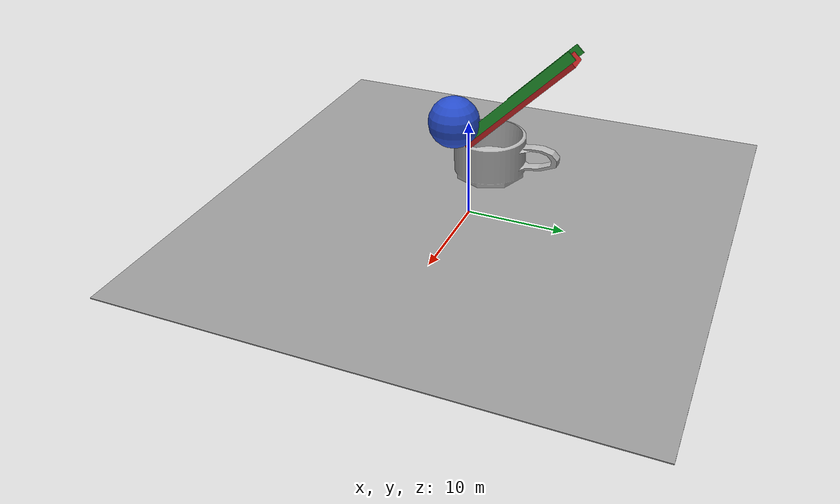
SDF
<?xml version="1.0"?>

<sdf version="1.5">
  <world name="slide_world">

  <!-- cfm is 1e-5 for single precision -->
  <!-- erp is typically .1-.8 -->
  <!-- here's the global contact cfm/erp -->
  <physics type="ode">
    <gravity>0 0 -9.8</gravity>
    <ode>
      <solver>
        <type>quick</type>
        <iters>10</iters>
        <sor>1.3</sor>
      </solver>
      <constraints>
        <cfm>0.0000000001</cfm>
        <erp>0.2</erp>
        <contact_max_correcting_vel>100.0</contact_max_correcting_vel>
        <contact_surface_layer>0.001</contact_surface_layer>
      </constraints>
    </ode>
  </physics>

  <gui>
    <camera name="user_camera">
      <pose>-50 0 50.0 0 0.653225966620481 0.011400943877021689835</pose>
    </camera>
  </gui>

  <scene>
    <ambient>0.8 0.8 0.8 0.8</ambient>
    <sky>
    </sky>
    <grid>false</grid>
  </scene>
  <!-- A global light source -->
  <light type="directional" name="sun">
    <cast_shadows>true</cast_shadows>
    <pose>0 0 10 0 0 0</pose>
    <diffuse>0.8 0.8 0.8 1</diffuse>
    <specular>0.2 0.2 0.2 1</specular>
    <attenuation>
      <range>1000</range>
      <constant>0.9</constant>
      <linear>0.01</linear>
      <quadratic>0.001</quadratic>
    </attenuation>
    <direction>-0.5 0.1 -0.9</direction>
  </light>

  <model name="gplane">
    <pose>0 0 0 0 0 0</pose>
    <static>true</static>

    <link name="plane">
      <collision name="plane">
        <surface>
          <contact>
            <ode>
              <kp>1000000.0</kp>
              <kd>1.0</kd>
            </ode>
          </contact>
        </surface>
        <geometry>
          <box>
            <size>51.3 51.3 0.1</size>
          </box>
        </geometry>
      </collision>
      <visual name="plane">
        <!-- map3.png -->
        <material>
          <script>
            <uri>file://media/materials/scripts/gazebo.material</uri>
            <name>Gazebo/GrayGrid</name>
          </script>
        </material>
        <geometry>
          <box>
            <size>51.3 51.3 0.1</size>
          </box>
        </geometry>
      </visual>
    </link>
  </model>

  <model name="endbin_model">
    <static>true</static>
    <link name="endbin_body">
      <collision name="endbin_body_collision">
        <pose>   -6.0    0.0     1.6  -1.5708    0.0    1.5708</pose>
        <geometry>
          <mesh>
            <scale>5 2 5</scale>
            <uri>model://Media/models/slide_endbin.stl</uri>
          </mesh>
        </geometry>
        <surface>
          <contact>
            <ode>
              <kp>10000000000.0</kp>
              <kd>1</kd>
            </ode>
          </contact>
          <friction>
            <ode>
              <mu>0.0</mu>
              <mu2>0.0</mu2>
            </ode>
          </friction>
        </surface>
      </collision>
      <visual name="endbin_body_visual">
        <pose>   -6.0    0.0     1.6  -1.5708    0.0    1.5708</pose>
        <geometry>
          <mesh>
            <scale>5 2 5</scale>
            <uri>model://Media/models/slide_endbin.stl</uri>
          </mesh>
        </geometry>
      </visual>
    </link>
  </model>

  <!-- The Slide -->
  <model name="slide1_model">
    <static>true</static>
    <link name="slide1_legs_body">
      <collision name="slide_base_geom_collision">
        <pose>   0.0    5.0    13  0.785398    0.0    0.00</pose>
        <surface>
          <friction>
            <ode>
              <mu>0.0</mu>
              <mu2>0.0</mu2>
            </ode>
          </friction>
          <contact>
            <ode>
              <kp>1000000000.0</kp>
              <kd>1.0</kd>
            </ode>
          </contact>
        </surface>
        <geometry>
          <box>
            <size>  2.0   14.14   1.0</size>
          </box>
        </geometry>
      </collision>
      <visual name="slide_base_geom_visual">
        <pose>   0.0    5.0    13  0.785398    0.0    0.00</pose>
        <geometry>
          <box>
            <size>2.0   14.14   1.0</size>
          </box>
        </geometry>
        <material>
          <script>
            <uri>file://media/materials/scripts/gazebo.material</uri>
            <name>Gazebo/Red</name>
          </script>
        </material>
      </visual>

      <collision name="slide_side1_geom_collision">
        <pose>   1.0    5.0   13.7 2.35619    0.0    0.00</pose>
        <surface>
          <friction>
            <ode>
              <mu>0.0</mu>
              <mu2>0.0</mu2>
            </ode>
          </friction>
          <contact>
            <ode>
              <kp>10000000000.0</kp>
              <kd>1.0</kd>
            </ode>
          </contact>
        </surface>
        <geometry>
          <box>
            <size>0.1   1.0   14.14</size>
          </box>
        </geometry>
      </collision>
      <visual name="slide_side1_geom_collision">
        <pose>   1.0    5.0   13.7 2.35619    0.0    0.00</pose>
        <geometry>
          <box>
            <size>  0.1    1.0   14.14</size>
          </box>
        </geometry>
        <material>
          <script>
            <uri>file://media/materials/scripts/gazebo.material</uri>
            <name>Gazebo/Green</name>
          </script>
        </material>
      </visual>

      <collision name="slide_side2_geom_collision">
        <pose>   -1.0    7.0  15.5 2.35619    0.0    0.00</pose>
        <surface>
          <friction>
            <ode>
              <mu>0.0</mu>
              <mu2>0.0</mu2>
            </ode>
          </friction>
          <contact>
            <ode>
              <kp>10000000000.0</kp>
              <kd>1.0</kd>
            </ode>
          </contact>
        </surface>
        <geometry>
          <box>
            <size>  0.1    1.0   10.0</size>
          </box>
        </geometry>
      </collision>
      <visual name="slide_side2_geom_visual">
        <pose>   -1.0    7.0  15.5 2.35619    0.0    0.00</pose>
        <geometry>
          <box>
          <size>0.1    1.0    9.0</size>
          </box>
        </geometry>
        <material>
          <script>
            <uri>file://media/materials/scripts/gazebo.material</uri>
            <name>Gazebo/Green</name>
          </script>
        </material>
      </visual>

      <collision name="slide_end_geom_collision">
        <pose>1.25   -1.0   10.5   0 0 0</pose>
        <surface>
          <contact>
            <ode>
              <kp>100000000.0</kp>
              <kd>1</kd>
            </ode>
          </contact>
          <friction>
            <ode>
              <mu>0.0</mu>
              <mu2>0.0</mu2>
            </ode>
          </friction>
        </surface>
        <geometry>
          <sphere>
            <radius>2.5</radius>
          </sphere>
        </geometry>
      </collision>
      <visual name="slide_end_geom_visual">
        <pose>1.25   -1.0   10.5   0 0 0</pose>
        <geometry>
          <sphere>
            <radius>2.5</radius>
          </sphere>
        </geometry>
        <material>
          <script>
            <uri>file://media/materials/scripts/gazebo.material</uri>
            <name>Gazebo/Blue</name>
          </script>
        </material>
      </visual>

    </link>
  </model>

</world>
</sdf>
